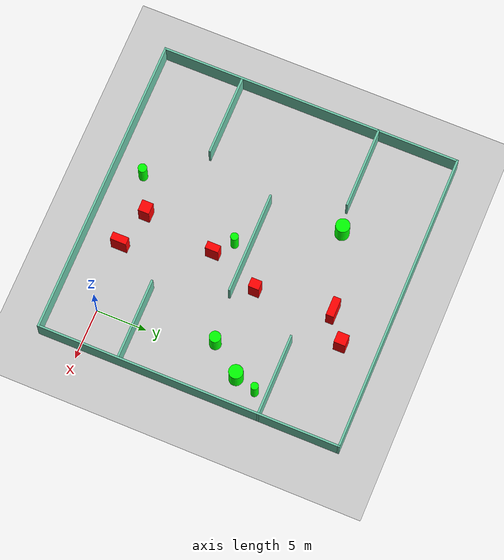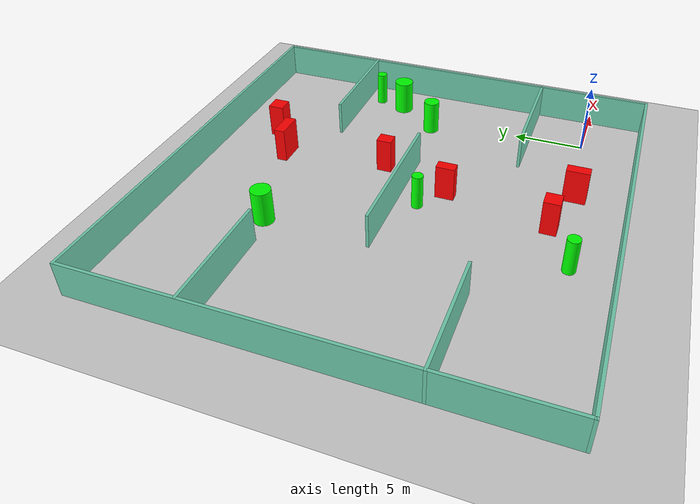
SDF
<sdf version="1.7">
 <world name="default">
  <light name="sun" type="directional">
   <pose>0 0 10 0 -0 0</pose>
   <diffuse>0.8 0.8 0.8 1</diffuse>
   <specular>0.2 0.2 0.2 1</specular>
   <attenuation>
    <range>1000</range>
    <constant>0.9</constant>
    <linear>0.01</linear>
    <quadratic>0.001</quadratic>
   </attenuation>
   <direction>-0.5 0.1 -0.9</direction>
   <spot><inner_angle>0</inner_angle><outer_angle>0</outer_angle><falloff>0</falloff></spot>
  </light>
  <model name="ground_plane">
   <static>1</static>
   <link name="link">
    <collision name="collision">
     <geometry><plane><normal>0 0 1</normal><size>100 100</size></plane></geometry>
     <surface>
      <contact><collide_bitmask>65535</collide_bitmask></contact>
      <friction><ode><mu>100</mu><mu2>50</mu2></ode></friction>
     </surface>
    </collision>
    <visual name="visual">
     <cast_shadows>0</cast_shadows>
     <geometry><plane><normal>0 0 1</normal><size>100 100</size></plane></geometry>
     <material>
      <script><uri>file://media/materials/scripts/gazebo.material</uri><name>Gazebo/Grey</name></script>
     </material>
    </visual>
   </link>
  </model>
  <gravity>0 0 -9.8</gravity>
  <magnetic_field>6e-06 2.3e-05 -4.2e-05</magnetic_field>
  <atmosphere type="adiabatic"/>
  <physics type="ode">
   <max_step_size>0.001</max_step_size>
   <real_time_factor>1</real_time_factor>
   <real_time_update_rate>1000</real_time_update_rate>
  </physics>
  <scene><ambient>0.4 0.4 0.4 1</ambient><background>0.7 0.7 0.7 1</background><shadows>1</shadows></scene>
  <spherical_coordinates>
   <surface_model>EARTH_WGS84</surface_model>
   <latitude_deg>0</latitude_deg>
   <longitude_deg>0</longitude_deg>
   <elevation>0</elevation>
   <heading_deg>0</heading_deg>
  </spherical_coordinates>
  <model name="my_base_walls">
   <link name="Wall_10">
    <collision name="Wall_10_Collision">
     <geometry><box><size>8.2 0.2 2.5</size></box></geometry>
     <pose>0 0 1.25 0 -0 0</pose>
    </collision>
    <visual name="Wall_10_Visual">
     <pose>0 0 1.25 0 -0 0</pose>
     <geometry><box><size>8.2 0.2 2.5</size></box></geometry>
     <material>
      <script><uri>file://media/materials/scripts/gazebo.material</uri><name>Gazebo/Grey</name></script>
      <ambient>0.435294 0.796078 0.67451 1</ambient>
     </material>
     <meta><layer>0</layer></meta>
    </visual>
    <pose>-11 -7 0 0 -0 0</pose>
   </link>
   <link name="Wall_12">
    <collision name="Wall_12_Collision">
     <geometry><box><size>8.2 0.2 2.5</size></box></geometry>
     <pose>0 0 1.25 0 -0 0</pose>
    </collision>
    <visual name="Wall_12_Visual">
     <pose>0 0 1.25 0 -0 0</pose>
     <geometry><box><size>8.2 0.2 2.5</size></box></geometry>
     <material>
      <script><uri>file://media/materials/scripts/gazebo.material</uri><name>Gazebo/Grey</name></script>
      <ambient>0.435294 0.796078 0.67451 1</ambient>
     </material>
     <meta><layer>0</layer></meta>
    </visual>
    <pose>-11 7 0 0 -0 0</pose>
   </link>
   <link name="Wall_14">
    <collision name="Wall_14_Collision">
     <geometry><box><size>8.2 0.2 2.5</size></box></geometry>
     <pose>0 0 1.25 0 -0 0</pose>
    </collision>
    <visual name="Wall_14_Visual">
     <pose>0 0 1.25 0 -0 0</pose>
     <geometry><box><size>8.2 0.2 2.5</size></box></geometry>
     <material>
      <script><uri>file://media/materials/scripts/gazebo.material</uri><name>Gazebo/Grey</name></script>
      <ambient>0.435294 0.796078 0.67451 1</ambient>
     </material>
     <meta><layer>0</layer></meta>
    </visual>
    <pose>11 7 0 0 -0 3.14159</pose>
   </link>
   <link name="Wall_16">
    <collision name="Wall_16_Collision">
     <geometry><box><size>10.2 0.2 2.5</size></box></geometry>
     <pose>0 0 1.25 0 -0 0</pose>
    </collision>
    <visual name="Wall_16_Visual">
     <pose>0 0 1.25 0 -0 0</pose>
     <geometry><box><size>10.2 0.2 2.5</size></box></geometry>
     <material>
      <script><uri>file://media/materials/scripts/gazebo.material</uri><name>Gazebo/Grey</name></script>
      <ambient>0.435294 0.796078 0.67451 1</ambient>
     </material>
     <meta><layer>0</layer></meta>
    </visual>
    <pose>0 0 0 0 -0 3.14159</pose>
   </link>
   <link name="Wall_2">
    <collision name="Wall_2_Collision">
     <geometry><box><size>30.2 0.2 2.5</size></box></geometry>
     <pose>0 0 1.25 0 -0 0</pose>
    </collision>
    <visual name="Wall_2_Visual">
     <pose>0 0 1.25 0 -0 0</pose>
     <geometry><box><size>30.2 0.2 2.5</size></box></geometry>
     <material>
      <script><uri>file://media/materials/scripts/gazebo.material</uri><name>Gazebo/Grey</name></script>
      <ambient>0.435294 0.796078 0.67451 1</ambient>
     </material>
     <meta><layer>0</layer></meta>
    </visual>
    <pose>0 -15 0 0 -0 3.14159</pose>
   </link>
   <link name="Wall_3">
    <collision name="Wall_3_Collision">
     <geometry><box><size>30.2 0.2 2.5</size></box></geometry>
     <pose>0 0 1.25 0 -0 0</pose>
    </collision>
    <visual name="Wall_3_Visual">
     <pose>0 0 1.25 0 -0 0</pose>
     <geometry><box><size>30.2 0.2 2.5</size></box></geometry>
     <material>
      <script><uri>file://media/materials/scripts/gazebo.material</uri><name>Gazebo/Grey</name></script>
      <ambient>0.435294 0.796078 0.67451 1</ambient>
     </material>
     <meta><layer>0</layer></meta>
    </visual>
    <pose>-15 0 0 0 -0 1.5708</pose>
   </link>
   <link name="Wall_4">
    <collision name="Wall_4_Collision">
     <geometry><box><size>30.2 0.2 2.5</size></box></geometry>
     <pose>0 0 1.25 0 -0 0</pose>
    </collision>
    <visual name="Wall_4_Visual">
     <pose>0 0 1.25 0 -0 0</pose>
     <geometry><box><size>30.2 0.2 2.5</size></box></geometry>
     <material>
      <script><uri>file://media/materials/scripts/gazebo.material</uri><name>Gazebo/Grey</name></script>
      <ambient>0.435294 0.796078 0.67451 1</ambient>
     </material>
     <meta><layer>0</layer></meta>
    </visual>
    <pose>0 15 0 0 -0 0</pose>
   </link>
   <link name="Wall_6">
    <collision name="Wall_6_Collision">
     <geometry><box><size>30.2 0.2 2.5</size></box></geometry>
     <pose>0 0 1.25 0 -0 0</pose>
    </collision>
    <visual name="Wall_6_Visual">
     <pose>0 0 1.25 0 -0 0</pose>
     <geometry><box><size>30.2 0.2 2.5</size></box></geometry>
     <material>
      <script><uri>file://media/materials/scripts/gazebo.material</uri><name>Gazebo/Grey</name></script>
      <ambient>0.435294 0.796078 0.67451 1</ambient>
     </material>
     <meta><layer>0</layer></meta>
    </visual>
    <pose>15 0 0 0 -0 1.5708</pose>
   </link>
   <link name="Wall_8">
    <collision name="Wall_8_Collision">
     <geometry><box><size>8.2 0.2 2.5</size></box></geometry>
     <pose>0 0 1.25 0 -0 0</pose>
    </collision>
    <visual name="Wall_8_Visual">
     <pose>0 0 1.25 0 -0 0</pose>
     <geometry><box><size>8.2 0.2 2.5</size></box></geometry>
     <material>
      <script><uri>file://media/materials/scripts/gazebo.material</uri><name>Gazebo/Grey</name></script>
      <ambient>0.435294 0.796078 0.67451 1</ambient>
     </material>
     <meta><layer>0</layer></meta>
    </visual>
    <pose>11 -7 0 0 -0 3.14159</pose>
   </link>
   <static>1</static>
   <pose>-11 11 0 0 -0 0</pose>
  </model>
  <model name="cylinder1">
   <static>1</static>
   <link name="link">
    <inertial>
     <mass>1</mass>
     <inertia><ixx>0.5</ixx><ixy>0</ixy><ixz>0</ixz><iyy>0.5</iyy><iyz>0</iyz><izz>1</izz></inertia>
    </inertial>
    <collision name="collision">
     <geometry><cylinder><radius>0.37687748817183464</radius><length>2.5</length></cylinder></geometry>
    </collision>
    <visual name="visual">
     <geometry><cylinder><radius>0.37687748817183464</radius><length>2.5</length></cylinder></geometry>
     <material>
      <ambient>0 1 0 1</ambient>
      <diffuse>0 1 0 1</diffuse>
      <specular>0.1 0.1 0.1 1</specular>
      <emissive>0 0 0 0</emissive>
     </material>
    </visual>
   </link>
   <pose>1.7028626296435974 16.720629304330448 1.25 0 0 0</pose>
  </model>
  <model name="cylinder2">
   <static>1</static>
   <link name="link">
    <inertial>
     <mass>1</mass>
     <inertia><ixx>0.5</ixx><ixy>0</ixy><ixz>0</ixz><iyy>0.5</iyy><iyz>0</iyz><izz>1</izz></inertia>
    </inertial>
    <collision name="collision">
     <geometry><cylinder><radius>0.6980443058083007</radius><length>2.5</length></cylinder></geometry>
    </collision>
    <visual name="visual">
     <geometry><cylinder><radius>0.6980443058083007</radius><length>2.5</length></cylinder></geometry>
     <material>
      <ambient>0 1 0 1</ambient>
      <diffuse>0 1 0 1</diffuse>
      <specular>0.1 0.1 0.1 1</specular>
      <emissive>0 0 0 0</emissive>
     </material>
    </visual>
   </link>
   <pose>-15.871659721922722 18.40603426135138 1.25 0 0 0</pose>
  </model>
  <model name="cylinder3">
   <static>1</static>
   <link name="link">
    <inertial>
     <mass>1</mass>
     <inertia><ixx>0.5</ixx><ixy>0</ixy><ixz>0</ixz><iyy>0.5</iyy><iyz>0</iyz><izz>1</izz></inertia>
    </inertial>
    <collision name="collision">
     <geometry><cylinder><radius>0.4373478461910748</radius><length>2.5</length></cylinder></geometry>
    </collision>
    <visual name="visual">
     <geometry><cylinder><radius>0.4373478461910748</radius><length>2.5</length></cylinder></geometry>
     <material>
      <ambient>0 1 0 1</ambient>
      <diffuse>0 1 0 1</diffuse>
      <specular>0.1 0.1 0.1 1</specular>
      <emissive>0 0 0 0</emissive>
     </material>
    </visual>
   </link>
   <pose>-13.950528660625935 -1.2226490356992277 1.25 0 0 0</pose>
  </model>
  <model name="cylinder4">
   <static>1</static>
   <link name="link">
    <inertial>
     <mass>1</mass>
     <inertia><ixx>0.5</ixx><ixy>0</ixy><ixz>0</ixz><iyy>0.5</iyy><iyz>0</iyz><izz>1</izz></inertia>
    </inertial>
    <collision name="collision">
     <geometry><cylinder><radius>0.3877687253542674</radius><length>2.5</length></cylinder></geometry>
    </collision>
    <visual name="visual">
     <geometry><cylinder><radius>0.3877687253542674</radius><length>2.5</length></cylinder></geometry>
     <material>
      <ambient>0 1 0 1</ambient>
      <diffuse>0 1 0 1</diffuse>
      <specular>0.1 0.1 0.1 1</specular>
      <emissive>0 0 0 0</emissive>
     </material>
    </visual>
   </link>
   <pose>-10.975824413063116 9.437382630982114 1.25 0 0 0</pose>
  </model>
  <model name="cylinder5">
   <static>1</static>
   <link name="link">
    <inertial>
     <mass>1</mass>
     <inertia><ixx>0.5</ixx><ixy>0</ixy><ixz>0</ixz><iyy>0.5</iyy><iyz>0</iyz><izz>1</izz></inertia>
    </inertial>
    <collision name="collision">
     <geometry><cylinder><radius>0.5659316807470409</radius><length>2.5</length></cylinder></geometry>
    </collision>
    <visual name="visual">
     <geometry><cylinder><radius>0.5659316807470409</radius><length>2.5</length></cylinder></geometry>
     <material>
      <ambient>0 1 0 1</ambient>
      <diffuse>0 1 0 1</diffuse>
      <specular>0.1 0.1 0.1 1</specular>
      <emissive>0 0 0 0</emissive>
     </material>
    </visual>
   </link>
   <pose>-1.2582858495782894 11.541090613493306 1.25 0 0 0</pose>
  </model>
  <model name="cylinder6">
   <static>1</static>
   <link name="link">
    <inertial>
     <mass>1</mass>
     <inertia><ixx>0.5</ixx><ixy>0</ixy><ixz>0</ixz><iyy>0.5</iyy><iyz>0</iyz><izz>1</izz></inertia>
    </inertial>
    <collision name="collision">
     <geometry><cylinder><radius>0.6964169387880944</radius><length>2.5</length></cylinder></geometry>
    </collision>
    <visual name="visual">
     <geometry><cylinder><radius>0.6964169387880944</radius><length>2.5</length></cylinder></geometry>
     <material>
      <ambient>0 1 0 1</ambient>
      <diffuse>0 1 0 1</diffuse>
      <specular>0.1 0.1 0.1 1</specular>
      <emissive>0 0 0 0</emissive>
     </material>
    </visual>
   </link>
   <pose>1.0875190080175408 14.606263076009178 1.25 0 0 0</pose>
  </model>
  <model name="box1">
   <static>1</static>
   <link name="link">
    <inertial>
     <mass>1</mass>
     <inertia><ixx>0.083</ixx><ixy>0</ixy><ixz>0</ixz><iyy>0.083</iyy><iyz>0</iyz><izz>0.083</izz></inertia>
    </inertial>
    <collision name="collision">
     <geometry><box><size>0.7463180240548452 1.6005154771790464 2.5</size></box></geometry>
    </collision>
    <visual name="visual">
     <geometry><box><size>0.7463180240548452 1.6005154771790464 2.5</size></box></geometry>
     <material>
      <ambient>1 0 0 1</ambient>
      <diffuse>1 0 0 1</diffuse>
      <specular>0.1 0.1 0.1 1</specular>
      <emissive>0 0 0 0</emissive>
     </material>
    </visual>
    <sensor name="my_contact" type="contact">
     <contact><collision>box_collision</collision><topic>__default_topic__</topic></contact>
    </sensor>
   </link>
   <pose>-6.68904548951201 -0.44789352910226876 1.25 0 0 0</pose>
  </model>
  <model name="box2">
   <static>1</static>
   <link name="link">
    <inertial>
     <mass>1</mass>
     <inertia><ixx>0.083</ixx><ixy>0</ixy><ixz>0</ixz><iyy>0.083</iyy><iyz>0</iyz><izz>0.083</izz></inertia>
    </inertial>
    <collision name="collision">
     <geometry><box><size>1.9339261512886745 0.765964001127574 2.5</size></box></geometry>
    </collision>
    <visual name="visual">
     <geometry><box><size>1.9339261512886745 0.765964001127574 2.5</size></box></geometry>
     <material>
      <ambient>1 0 0 1</ambient>
      <diffuse>1 0 0 1</diffuse>
      <specular>0.1 0.1 0.1 1</specular>
      <emissive>0 0 0 0</emissive>
     </material>
    </visual>
    <sensor name="my_contact" type="contact">
     <contact><collision>box_collision</collision><topic>__default_topic__</topic></contact>
    </sensor>
   </link>
   <pose>-8.158448642419689 20.577228111859437 1.25 0 0 0</pose>
  </model>
  <model name="box3">
   <static>1</static>
   <link name="link">
    <inertial>
     <mass>1</mass>
     <inertia><ixx>0.083</ixx><ixy>0</ixy><ixz>0</ixz><iyy>0.083</iyy><iyz>0</iyz><izz>0.083</izz></inertia>
    </inertial>
    <collision name="collision">
     <geometry><box><size>1.1248851085968488 1.142049247488582 2.5</size></box></geometry>
    </collision>
    <visual name="visual">
     <geometry><box><size>1.1248851085968488 1.142049247488582 2.5</size></box></geometry>
     <material>
      <ambient>1 0 0 1</ambient>
      <diffuse>1 0 0 1</diffuse>
      <specular>0.1 0.1 0.1 1</specular>
      <emissive>0 0 0 0</emissive>
     </material>
    </visual>
    <sensor name="my_contact" type="contact">
     <contact><collision>box_collision</collision><topic>__default_topic__</topic></contact>
    </sensor>
   </link>
   <pose>-5.572602747165062 22.417486923648504 1.25 0 0 0</pose>
  </model>
  <model name="box4">
   <static>1</static>
   <link name="link">
    <inertial>
     <mass>1</mass>
     <inertia><ixx>0.083</ixx><ixy>0</ixy><ixz>0</ixz><iyy>0.083</iyy><iyz>0</iyz><izz>0.083</izz></inertia>
    </inertial>
    <collision name="collision">
     <geometry><box><size>0.7312951275114058 1.3210334387521503 2.5</size></box></geometry>
    </collision>
    <visual name="visual">
     <geometry><box><size>0.7312951275114058 1.3210334387521503 2.5</size></box></geometry>
     <material>
      <ambient>1 0 0 1</ambient>
      <diffuse>1 0 0 1</diffuse>
      <specular>0.1 0.1 0.1 1</specular>
      <emissive>0 0 0 0</emissive>
     </material>
    </visual>
    <sensor name="my_contact" type="contact">
     <contact><collision>box_collision</collision><topic>__default_topic__</topic></contact>
    </sensor>
   </link>
   <pose>-9.256051912270287 7.962551351352872 1.25 0 0 0</pose>
  </model>
  <model name="box5">
   <static>1</static>
   <link name="link">
    <inertial>
     <mass>1</mass>
     <inertia><ixx>0.083</ixx><ixy>0</ixy><ixz>0</ixz><iyy>0.083</iyy><iyz>0</iyz><izz>0.083</izz></inertia>
    </inertial>
    <collision name="collision">
     <geometry><box><size>1.1265844205960858 1.1121649526557444 2.5</size></box></geometry>
    </collision>
    <visual name="visual">
     <geometry><box><size>1.1265844205960858 1.1121649526557444 2.5</size></box></geometry>
     <material>
      <ambient>1 0 0 1</ambient>
      <diffuse>1 0 0 1</diffuse>
      <specular>0.1 0.1 0.1 1</specular>
      <emissive>0 0 0 0</emissive>
     </material>
    </visual>
    <sensor name="my_contact" type="contact">
     <contact><collision>box_collision</collision><topic>__default_topic__</topic></contact>
    </sensor>
   </link>
   <pose>-10.483146225907804 0.5888499104239253 1.25 0 0 0</pose>
  </model>
  <model name="box6">
   <static>1</static>
   <link name="link">
    <inertial>
     <mass>1</mass>
     <inertia><ixx>0.083</ixx><ixy>0</ixy><ixz>0</ixz><iyy>0.083</iyy><iyz>0</iyz><izz>0.083</izz></inertia>
    </inertial>
    <collision name="collision">
     <geometry><box><size>0.9231379594224993 1.0691575732314063 2.5</size></box></geometry>
    </collision>
    <visual name="visual">
     <geometry><box><size>0.9231379594224993 1.0691575732314063 2.5</size></box></geometry>
     <material>
      <ambient>1 0 0 1</ambient>
      <diffuse>1 0 0 1</diffuse>
      <specular>0.1 0.1 0.1 1</specular>
      <emissive>0 0 0 0</emissive>
     </material>
    </visual>
    <sensor name="my_contact" type="contact">
     <contact><collision>box_collision</collision><topic>__default_topic__</topic></contact>
    </sensor>
   </link>
   <pose>-7.422727081818806 12.99706141847216 1.25 0 0 0</pose>
  </model>
 </world>
</sdf>
